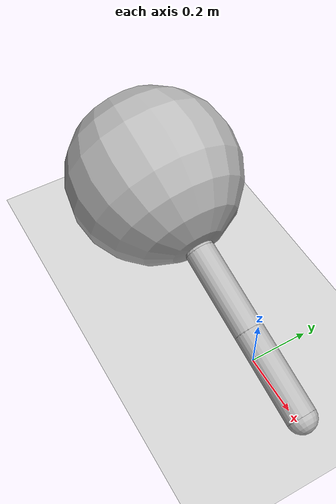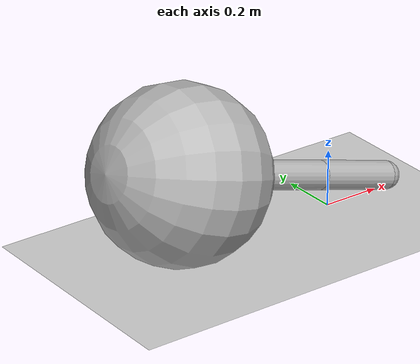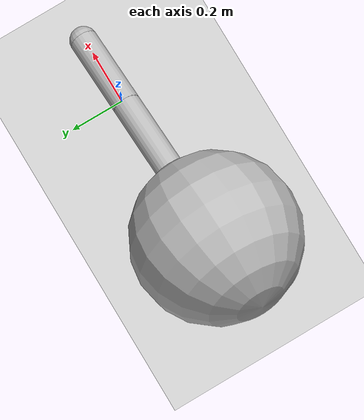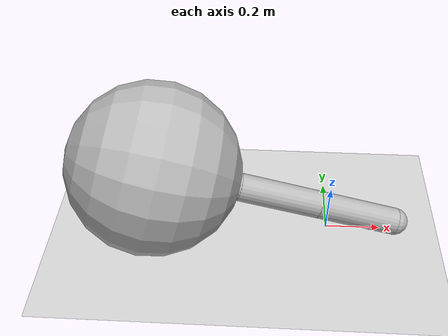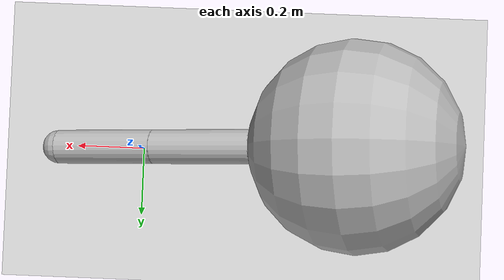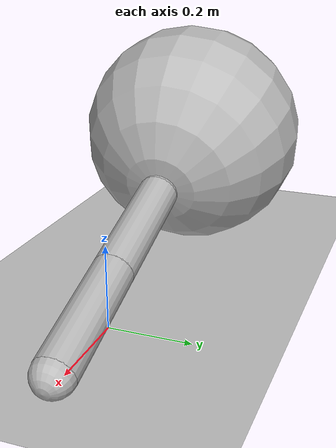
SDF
<sdf version="1.7">
 <world name="default">
  <light name="sun" type="directional">
   <pose>0 0 10 0 -0 0</pose>
   <diffuse>0.8 0.8 0.8 1</diffuse>
   <specular>0.2 0.2 0.2 1</specular>
   <attenuation>
    <range>1000</range>
    <constant>0.9</constant>
    <linear>0.01</linear>
    <quadratic>0.001</quadratic>
   </attenuation>
   <direction>-0.5 0.1 -0.9</direction>
   <spot><inner_angle>0</inner_angle><outer_angle>0</outer_angle><falloff>0</falloff></spot>
  </light>
  <model name="ground_plane">
   <static>1</static>
   <link name="link">
    <collision name="collision">
     <geometry><plane><normal>0 0 1</normal><size>100 100</size></plane></geometry>
     <surface>
      <contact><collide_bitmask>65535</collide_bitmask></contact>
      <friction><ode><mu>100</mu><mu2>50</mu2></ode></friction>
     </surface>
    </collision>
    <visual name="visual">
     <cast_shadows>0</cast_shadows>
     <geometry><plane><normal>0 0 1</normal><size>100 100</size></plane></geometry>
     <material>
      <script><uri>file://media/materials/scripts/gazebo.material</uri><name>Gazebo/Grey</name></script>
     </material>
    </visual>
   </link>
  </model>
  <gravity>0 0 -9.8</gravity>
  <magnetic_field>6e-06 2.3e-05 -4.2e-05</magnetic_field>
  <atmosphere type="adiabatic"/>
  <physics type="ode">
   <max_step_size>0.001</max_step_size>
   <real_time_factor>1</real_time_factor>
   <real_time_update_rate>1000</real_time_update_rate>
  </physics>
  <scene><ambient>0.4 0.4 0.4 1</ambient><background>0.7 0.7 0.7 1</background><shadows>1</shadows></scene>
  <spherical_coordinates>
   <surface_model>EARTH_WGS84</surface_model>
   <latitude_deg>0</latitude_deg>
   <longitude_deg>0</longitude_deg>
   <elevation>0</elevation>
   <heading_deg>0</heading_deg>
  </spherical_coordinates>
  <model name="singlebot">
   <link name="base_link">
    <inertial>
     <mass>3</mass>
     <inertia><ixx>0.1</ixx><ixy>0</ixy><ixz>0</ixz><iyy>0.1</iyy><iyz>0</iyz><izz>0.1</izz></inertia>
    </inertial>
    <collision name="base_link_fixed_joint_lump__robot_base_collision">
     <geometry><sphere><radius>0.3</radius></sphere></geometry>
    </collision>
    <visual name="base_link_fixed_joint_lump__robot_base_visual">
     <geometry><sphere><radius>0.3</radius></sphere></geometry>
    </visual>
    <sensor name="imu_sensor" type="imu">
     <always_on>1</always_on>
     <update_rate>100</update_rate>
     <visualize>1</visualize>
     <topic>__default_topic__</topic>
     <plugin name="imu_plugin" filename="libgazebo_ros_imu_sensor.so">
      <topicName>imu</topicName>
      <bodyName>robot_base</bodyName>
      <updateRateHZ>1000.0</updateRateHZ>
      <gaussianNoise>0.0</gaussianNoise>
      <xyzOffset>0 0 0</xyzOffset>
      <rpyOffset>0 0 0</rpyOffset>
      <frameName>robot_base</frameName>
      <initialOrientationAsReference>0</initialOrientationAsReference>
      <robotNamespace>/</robotNamespace>
     </plugin>
    </sensor>
   </link>
   <joint name="hip_back_joint" type="revolute">
    <pose relative_to="base_link">0 0 -0.3 0 -0 0</pose>
    <parent>base_link</parent>
    <child>hip_back</child>
    <axis>
     <xyz>0 0 1</xyz>
     <limit><lower>-1e+16</lower><upper>1e+16</upper></limit>
     <dynamics><spring_reference>0</spring_reference><spring_stiffness>0</spring_stiffness></dynamics>
    </axis>
   </joint>
   <link name="hip_back">
    <pose relative_to="hip_back_joint">0 0 0 0 -0 0</pose>
    <inertial>
     <mass>0.3</mass>
     <inertia><ixx>0.1</ixx><ixy>0</ixy><ixz>0</ixz><iyy>0.1</iyy><iyz>0</iyz><izz>0.1</izz></inertia>
    </inertial>
    <collision name="hip_back_collision"><geometry><sphere><radius>0.05</radius></sphere></geometry></collision>
    <visual name="hip_back_visual"><geometry><sphere><radius>0.05</radius></sphere></geometry></visual>
   </link>
   <joint name="leg_back_joint" type="revolute">
    <pose relative_to="hip_back">0 0 0 3.14159 9.3e-05 3.14159</pose>
    <parent>hip_back</parent>
    <child>leg_back</child>
    <axis>
     <xyz>0 1 0</xyz>
     <limit><lower>-1e+16</lower><upper>1e+16</upper></limit>
     <dynamics><spring_reference>0</spring_reference><spring_stiffness>0</spring_stiffness></dynamics>
    </axis>
   </joint>
   <link name="leg_back">
    <pose relative_to="leg_back_joint">0 0 0 0 -0 0</pose>
    <inertial>
     <pose>0 0 0.15 0 -0 0</pose>
     <mass>0.3</mass>
     <inertia><ixx>0.1</ixx><ixy>0</ixy><ixz>0</ixz><iyy>0.1</iyy><iyz>0</iyz><izz>0.1</izz></inertia>
    </inertial>
    <collision name="leg_back_collision">
     <pose>0 0 0.15 0 -0 0</pose>
     <geometry><cylinder><length>0.3</length><radius>0.05</radius></cylinder></geometry>
    </collision>
    <collision name="leg_back_collision_1">
     <pose>0 0 0.3 0 -0 0</pose>
     <geometry><sphere><radius>0.05</radius></sphere></geometry>
    </collision>
    <visual name="leg_back_visual">
     <pose>0 0 0.15 0 -0 0</pose>
     <geometry><cylinder><length>0.3</length><radius>0.05</radius></cylinder></geometry>
    </visual>
    <visual name="leg_back_visual_1">
     <pose>0 0 0.3 0 -0 0</pose>
     <geometry><sphere><radius>0.05</radius></sphere></geometry>
    </visual>
   </link>
   <joint name="foot_back_joint" type="prismatic">
    <pose relative_to="leg_back">0 0 0.3 0 -0 0</pose>
    <parent>leg_back</parent>
    <child>foot_back</child>
    <axis>
     <xyz>0 0 1</xyz>
     <limit><lower>-0.3</lower><upper>0.3</upper><effort>20</effort><velocity>1</velocity></limit>
     <dynamics><spring_reference>0</spring_reference><spring_stiffness>0</spring_stiffness></dynamics>
    </axis>
   </joint>
   <link name="foot_back">
    <pose relative_to="foot_back_joint">0 0 0 0 -0 0</pose>
    <inertial>
     <pose>0 0 0.15 0 -0 0</pose>
     <mass>0.3</mass>
     <inertia><ixx>0.1</ixx><ixy>0</ixy><ixz>0</ixz><iyy>0.1</iyy><iyz>0</iyz><izz>0.1</izz></inertia>
    </inertial>
    <collision name="foot_back_collision">
     <pose>0 0 0.15 0 -0 0</pose>
     <geometry><cylinder><length>0.3</length><radius>0.05</radius></cylinder></geometry>
    </collision>
    <collision name="foot_back_fixed_joint_lump__foot_collision_collision_1">
     <pose>0 0 0.3 0 -0 0</pose>
     <geometry><sphere><radius>0.05</radius></sphere></geometry>
    </collision>
    <visual name="foot_back_visual">
     <pose>0 0 0.15 0 -0 0</pose>
     <geometry><cylinder><length>0.3</length><radius>0.05</radius></cylinder></geometry>
    </visual>
    <visual name="foot_back_visual_1">
     <pose>0 0 0.3 0 -0 0</pose>
     <geometry><sphere><radius>0.05</radius></sphere></geometry>
    </visual>
    <sensor name="foot_contact_sensor" type="contact">
     <contact><collision>foot_collision</collision><topic>__default_topic__</topic></contact>
     <plugin name="foot_back_plugin" filename="libgazebo_ros_bumper.so">
      <alwaysOn>1</alwaysOn>
      <bumperTopicName>/foot_back_contact</bumperTopicName>
      <frameName>world</frameName>
      <updateRate>100.0</updateRate>
      <robotNamespace>/</robotNamespace>
     </plugin>
    </sensor>
   </link>
   <static>0</static>
   <plugin name="gazebo_ros_control" filename="libgazebo_ros_control.so">
    <robotNamespace>/singlebot</robotNamespace>
   </plugin>
   <pose>-0.610558 -0.016982 0.3 0.078258 -1.27136 -0.054781</pose>
  </model>
 </world>
</sdf>
